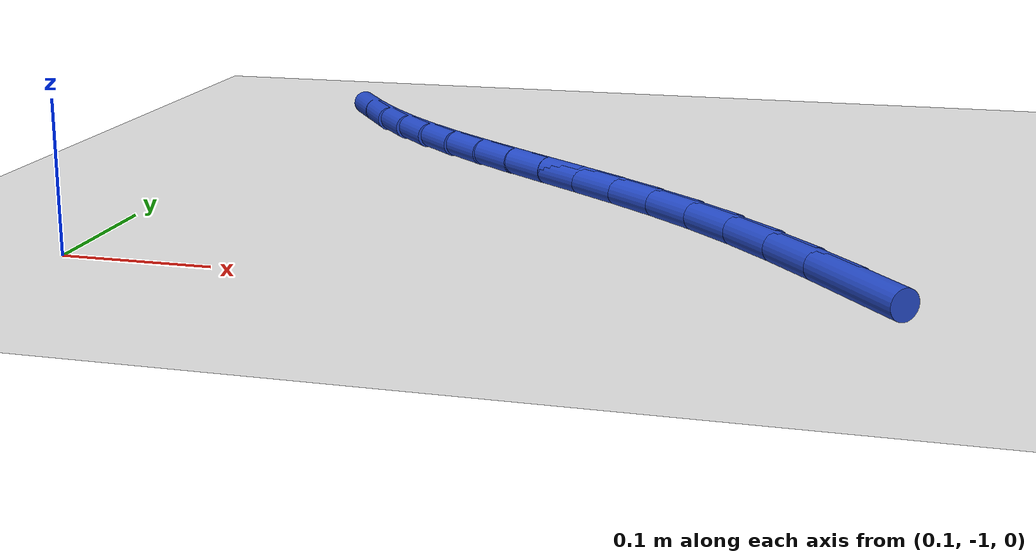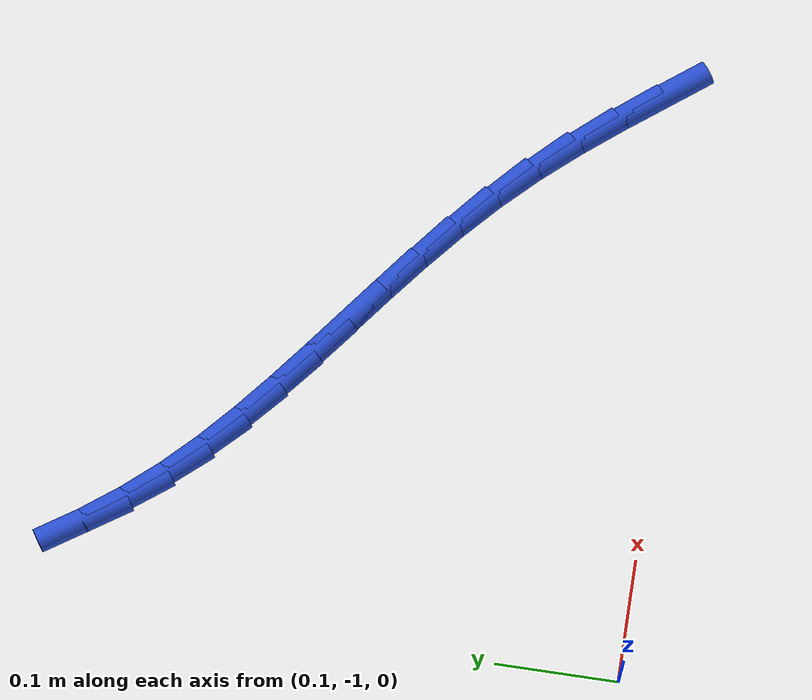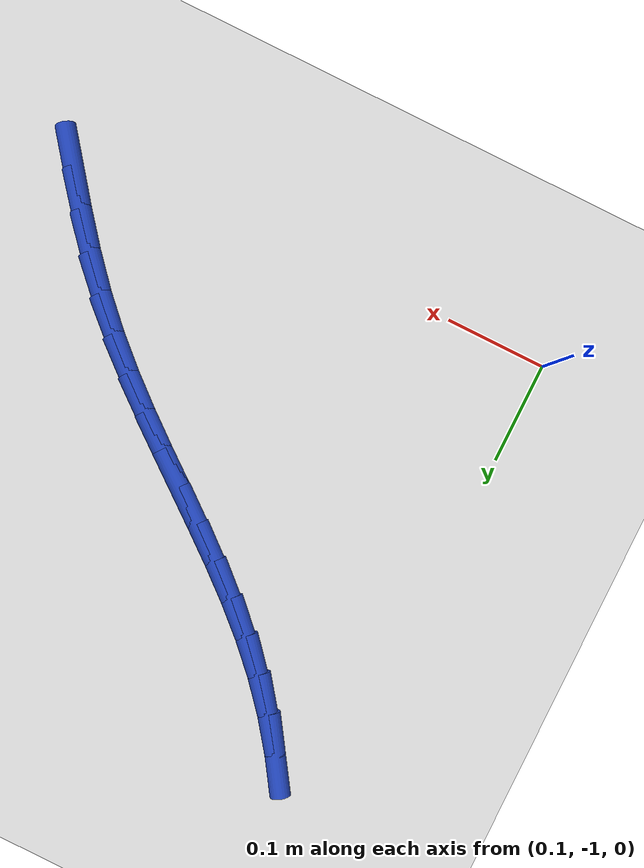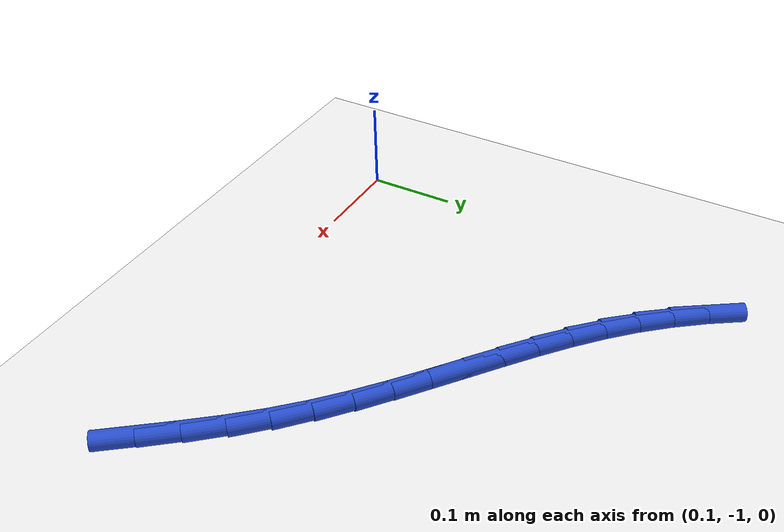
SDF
<sdf version="1.6">
 <world name="default">
  <model name="ground_plane">
   <static>1</static>
   <link name="link">
    <collision name="collision">
     <geometry><plane><normal>0 0 1</normal><size>100 100</size></plane></geometry>
     <surface><friction><ode><mu>100</mu><mu2>50</mu2></ode></friction></surface>
    </collision>
    <visual name="visual">
     <cast_shadows>0</cast_shadows>
     <geometry><plane><normal>0 0 1</normal><size>100 100</size></plane></geometry>
     <material>
      <script><uri>file://media/materials/scripts/gazebo.material</uri><name>Gazebo/WhiteGlow</name></script>
     </material>
    </visual>
   </link>
  </model>
  <model name="line">
   <link name="link_160">
    <pose>0.5839329558710651 -0.970597614392191 0.01 0 1.57 -0.922682989868438</pose>
    <collision name="collision">
     <geometry><cylinder><radius>0.01</radius><length>0.08</length></cylinder></geometry>
    </collision>
    <visual name="visual">
     <material>
      <script><name>Gazebo/Blue</name><uri>file://media/materials/scripts/gazebo.material</uri></script>
     </material>
     <geometry><cylinder><radius>0.01</radius><length>0.08</length></cylinder></geometry>
    </visual>
   </link>
   <link name="link_161">
    <pose>0.5588684687807393 -0.937497457633006 0.01 0 1.57 -0.8987836596160151</pose>
    <collision name="collision">
     <geometry><cylinder><radius>0.01</radius><length>0.08</length></cylinder></geometry>
    </collision>
    <visual name="visual">
     <material>
      <script><name>Gazebo/Blue</name><uri>file://media/materials/scripts/gazebo.material</uri></script>
     </material>
     <geometry><cylinder><radius>0.01</radius><length>0.08</length></cylinder></geometry>
    </visual>
   </link>
   <link name="link_162">
    <pose>0.5331014970102841 -0.9051079838440758 0.01 0 1.57 -0.8594295720361378</pose>
    <collision name="collision">
     <geometry><cylinder><radius>0.01</radius><length>0.08</length></cylinder></geometry>
    </collision>
    <visual name="visual">
     <material>
      <script><name>Gazebo/Blue</name><uri>file://media/materials/scripts/gazebo.material</uri></script>
     </material>
     <geometry><cylinder><radius>0.01</radius><length>0.08</length></cylinder></geometry>
    </visual>
   </link>
   <link name="link_163">
    <pose>0.5063319463768717 -0.8740495044531005 0.01 0 1.57 -0.8050524257786467</pose>
    <collision name="collision">
     <geometry><cylinder><radius>0.01</radius><length>0.08</length></cylinder></geometry>
    </collision>
    <visual name="visual">
     <material>
      <script><name>Gazebo/Blue</name><uri>file://media/materials/scripts/gazebo.material</uri></script>
     </material>
     <geometry><cylinder><radius>0.01</radius><length>0.08</length></cylinder></geometry>
    </visual>
   </link>
   <link name="link_164">
    <pose>0.47829369743004924 -0.8448868695430951 0.01 0 1.57 -0.7517869069082014</pose>
    <collision name="collision">
     <geometry><cylinder><radius>0.01</radius><length>0.08</length></cylinder></geometry>
    </collision>
    <visual name="visual">
     <material>
      <script><name>Gazebo/Blue</name><uri>file://media/materials/scripts/gazebo.material</uri></script>
     </material>
     <geometry><cylinder><radius>0.01</radius><length>0.08</length></cylinder></geometry>
    </visual>
   </link>
   <link name="link_165">
    <pose>0.4490895278472475 -0.8175827307592266 0.01 0 1.57 -0.71059322655279</pose>
    <collision name="collision">
     <geometry><cylinder><radius>0.01</radius><length>0.08</length></cylinder></geometry>
    </collision>
    <visual name="visual">
     <material>
      <script><name>Gazebo/Blue</name><uri>file://media/materials/scripts/gazebo.material</uri></script>
     </material>
     <geometry><cylinder><radius>0.01</radius><length>0.08</length></cylinder></geometry>
    </visual>
   </link>
   <link name="link_166">
    <pose>0.4190483968433151 -0.7917305144038558 0.01 0 1.57 -0.6821922758373173</pose>
    <collision name="collision">
     <geometry><cylinder><radius>0.01</radius><length>0.08</length></cylinder></geometry>
    </collision>
    <visual name="visual">
     <material>
      <script><name>Gazebo/Blue</name><uri>file://media/materials/scripts/gazebo.material</uri></script>
     </material>
     <geometry><cylinder><radius>0.01</radius><length>0.08</length></cylinder></geometry>
    </visual>
   </link>
   <link name="link_167">
    <pose>0.3885025363017409 -0.7669183043795372 0.01 0 1.57 -0.6669400086129138</pose>
    <collision name="collision">
     <geometry><cylinder><radius>0.01</radius><length>0.08</length></cylinder></geometry>
    </collision>
    <visual name="visual">
     <material>
      <script><name>Gazebo/Blue</name><uri>file://media/materials/scripts/gazebo.material</uri></script>
     </material>
     <geometry><cylinder><radius>0.01</radius><length>0.08</length></cylinder></geometry>
    </visual>
   </link>
   <link name="link_168">
    <pose>0.3577841781060161 -0.7427341845888277 0.01 0 1.57 -0.6651107389344442</pose>
    <collision name="collision">
     <geometry><cylinder><radius>0.01</radius><length>0.08</length></cylinder></geometry>
    </collision>
    <visual name="visual">
     <material>
      <script><name>Gazebo/Blue</name><uri>file://media/materials/scripts/gazebo.material</uri></script>
     </material>
     <geometry><cylinder><radius>0.01</radius><length>0.08</length></cylinder></geometry>
    </visual>
   </link>
   <link name="link_169">
    <pose>0.3272255541396307 -0.718766238934283 0.01 0 1.57 -0.67697508176895</pose>
    <collision name="collision">
     <geometry><cylinder><radius>0.01</radius><length>0.08</length></cylinder></geometry>
    </collision>
    <visual name="visual">
     <material>
      <script><name>Gazebo/Blue</name><uri>file://media/materials/scripts/gazebo.material</uri></script>
     </material>
     <geometry><cylinder><radius>0.01</radius><length>0.08</length></cylinder></geometry>
    </visual>
   </link>
   <link name="link_170">
    <pose>0.2971588962860751 -0.6946025513184594 0.01 0 1.57 -0.7028092070068196</pose>
    <collision name="collision">
     <geometry><cylinder><radius>0.01</radius><length>0.08</length></cylinder></geometry>
    </collision>
    <visual name="visual">
     <material>
      <script><name>Gazebo/Blue</name><uri>file://media/materials/scripts/gazebo.material</uri></script>
     </material>
     <geometry><cylinder><radius>0.01</radius><length>0.08</length></cylinder></geometry>
    </visual>
   </link>
   <link name="link_171">
    <pose>0.2679164364288394 -0.6698312056439121 0.01 0 1.57 -0.742824792698918</pose>
    <collision name="collision">
     <geometry><cylinder><radius>0.01</radius><length>0.08</length></cylinder></geometry>
    </collision>
    <visual name="visual">
     <material>
      <script><name>Gazebo/Blue</name><uri>file://media/materials/scripts/gazebo.material</uri></script>
     </material>
     <geometry><cylinder><radius>0.01</radius><length>0.08</length></cylinder></geometry>
    </visual>
   </link>
   <link name="link_172">
    <pose>0.23983040645141437 -0.644040285813198 0.01 0 1.57 -0.7970112504669763</pose>
    <collision name="collision">
     <geometry><cylinder><radius>0.01</radius><length>0.08</length></cylinder></geometry>
    </collision>
    <visual name="visual">
     <material>
      <script><name>Gazebo/Blue</name><uri>file://media/materials/scripts/gazebo.material</uri></script>
     </material>
     <geometry><cylinder><radius>0.01</radius><length>0.08</length></cylinder></geometry>
    </visual>
   </link>
   <link name="link_173">
    <pose>0.21323303823728926 -0.6168178757288723 0.01 0 1.57 -0.8626866506807412</pose>
    <collision name="collision">
     <geometry><cylinder><radius>0.01</radius><length>0.08</length></cylinder></geometry>
    </collision>
    <visual name="visual">
     <material>
      <script><name>Gazebo/Blue</name><uri>file://media/materials/scripts/gazebo.material</uri></script>
     </material>
     <geometry><cylinder><radius>0.01</radius><length>0.08</length></cylinder></geometry>
    </visual>
   </link>
   <link name="link_174">
    <pose>0.18840694491719542 -0.5878238005309538 0.01 0 1.57 -0.9275130924392607</pose>
    <collision name="collision">
     <geometry><cylinder><radius>0.01</radius><length>0.08</length></cylinder></geometry>
    </collision>
    <visual name="visual">
     <material>
      <script><name>Gazebo/Blue</name><uri>file://media/materials/scripts/gazebo.material</uri></script>
     </material>
     <geometry><cylinder><radius>0.01</radius><length>0.08</length></cylinder></geometry>
    </visual>
   </link>
   <link name="link_175">
    <pose>0.16537242145821285 -0.5570971578849282 0.01 0 1.57 -0.9875492109948106</pose>
    <collision name="collision">
     <geometry><cylinder><radius>0.01</radius><length>0.08</length></cylinder></geometry>
    </collision>
    <visual name="visual">
     <material>
      <script><name>Gazebo/Blue</name><uri>file://media/materials/scripts/gazebo.material</uri></script>
     </material>
     <geometry><cylinder><radius>0.01</radius><length>0.08</length></cylinder></geometry>
    </visual>
   </link>
  </model>
 </world>
</sdf>
